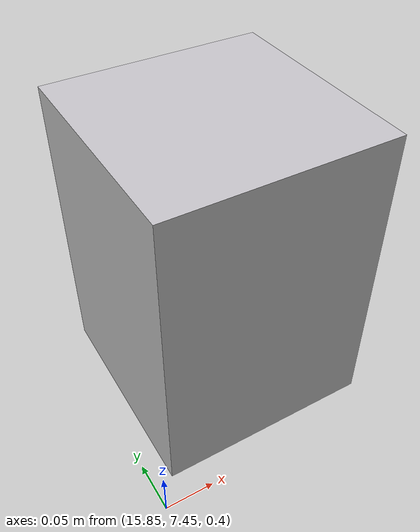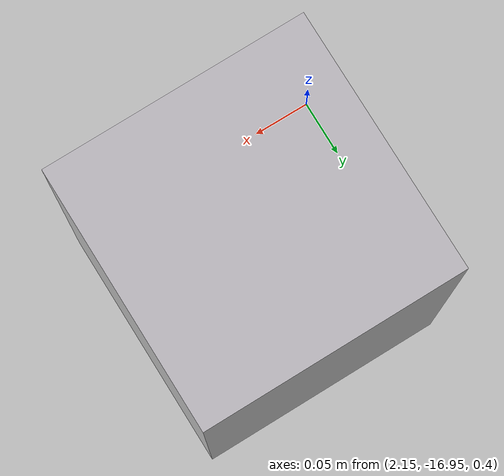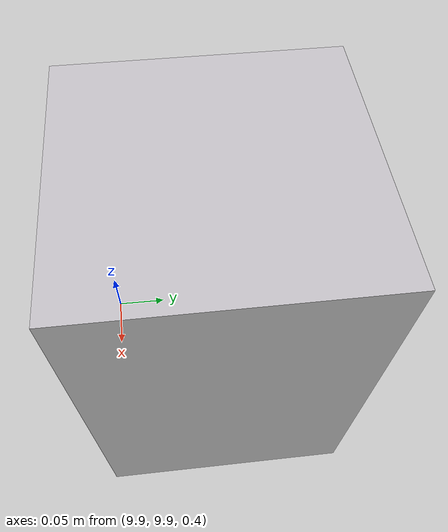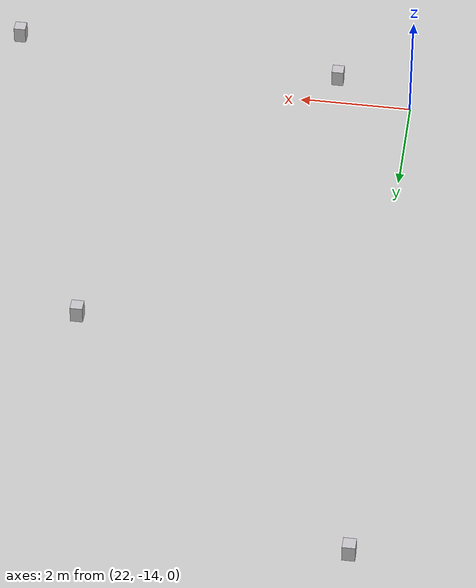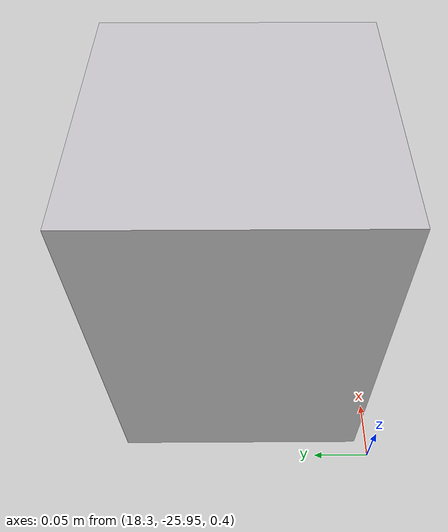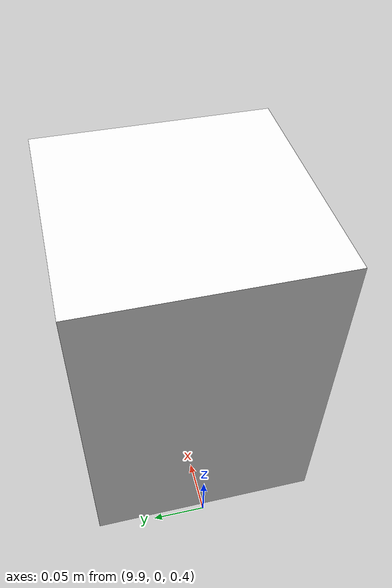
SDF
<sdf version="1.7">
 <world name="default">
  <light name="sun" type="directional">
   <pose>0 0 10 0 -0 0</pose>
   <diffuse>0.8 0.8 0.8 1</diffuse>
   <specular>0.2 0.2 0.2 1</specular>
   <attenuation>
    <range>1000</range>
    <constant>0.9</constant>
    <linear>0.01</linear>
    <quadratic>0.001</quadratic>
   </attenuation>
   <direction>-0.5 0.1 -0.9</direction>
   <spot><inner_angle>0</inner_angle><outer_angle>0</outer_angle><falloff>0</falloff></spot>
  </light>
  <model name="ground_plane">
   <static>1</static>
   <link name="link">
    <collision name="collision">
     <geometry><plane><normal>0 0 1</normal><size>100 100</size></plane></geometry>
     <surface><friction><ode><mu>100</mu><mu2>50</mu2></ode></friction></surface>
    </collision>
    <visual name="visual">
     <cast_shadows>0</cast_shadows>
     <geometry><plane><normal>0 0 1</normal><size>100 100</size></plane></geometry>
     <material>
      <script><uri>file://media/materials/scripts/gazebo.material</uri><name>Gazebo/Grey</name></script>
     </material>
    </visual>
   </link>
  </model>
  <gravity>0 0 -9.8</gravity>
  <magnetic_field>6e-06 2.3e-05 -4.2e-05</magnetic_field>
  <atmosphere type="adiabatic"/>
  <physics type="ode">
   <max_step_size>0.001</max_step_size>
   <real_time_factor>1</real_time_factor>
   <real_time_update_rate>1000</real_time_update_rate>
  </physics>
  <scene><ambient>0.4 0.4 0.4 1</ambient><background>0.7 0.7 0.7 1</background><shadows>1</shadows></scene>
  <spherical_coordinates>
   <surface_model>EARTH_WGS84</surface_model>
   <latitude_deg>0</latitude_deg>
   <longitude_deg>0</longitude_deg>
   <elevation>0</elevation>
   <heading_deg>0</heading_deg>
  </spherical_coordinates>
  <model name="LandMark3">
   <link name="base_link">
    <inertial>
     <pose>0 0 0.571648 0 -0 0</pose>
     <mass>159.314</mass>
     <inertia><ixx>2.50074</ixx><ixy>0</ixy><ixz>0</ixz><iyy>2.50074</iyy><iyz>0</iyz><izz>1.63568</izz></inertia>
    </inertial>
    <collision name="base_link_collision">
     <geometry>
      <mesh>
       <scale>1 1 1</scale>
       <uri>/home/lectric/Desktop/ERC22_WS/src/LandMark_description/meshes/LandMark3.dae</uri>
      </mesh>
     </geometry>
     <surface><friction><ode><mu>0.2</mu><mu2>0.2</mu2></ode></friction></surface>
    </collision>
    <visual name="base_link_visual">
     <pose>0 0 0.57 0 -0 0</pose>
     <geometry>
      <mesh>
       <scale>1 1 1</scale>
       <uri>/home/lectric/Desktop/ERC22_WS/src/LandMark_description/meshes/LandMark3.dae</uri>
      </mesh>
     </geometry>
    </visual>
    <self_collide>1</self_collide>
   </link>
   <plugin name="control" filename="libgazebo_ros_control.so"><robotNamespace>/</robotNamespace></plugin>
   <pose>28.35 -0.04 0 0 -0 0</pose>
  </model>
  <model name="LandMark7">
   <link name="base_link">
    <inertial>
     <pose>0 0 0.571648 0 -0 0</pose>
     <mass>159.314</mass>
     <inertia><ixx>2.50074</ixx><ixy>0</ixy><ixz>0</ixz><iyy>2.50074</iyy><iyz>0</iyz><izz>1.63568</izz></inertia>
    </inertial>
    <collision name="base_link_collision">
     <geometry>
      <mesh>
       <scale>1 1 1</scale>
       <uri>/home/lectric/Desktop/ERC22_WS/src/LandMark_description/meshes/LandMark7.dae</uri>
      </mesh>
     </geometry>
     <surface><friction><ode><mu>0.2</mu><mu2>0.2</mu2></ode></friction></surface>
    </collision>
    <visual name="base_link_visual">
     <pose>0 0 0.57 0 -0 0</pose>
     <geometry>
      <mesh>
       <scale>1 1 1</scale>
       <uri>/home/lectric/Desktop/ERC22_WS/src/LandMark_description/meshes/LandMark7.dae</uri>
      </mesh>
     </geometry>
    </visual>
    <self_collide>1</self_collide>
   </link>
   <plugin name="control" filename="libgazebo_ros_control.so"><robotNamespace>/</robotNamespace></plugin>
   <pose>15.97 7.57 0 0 -0 0</pose>
  </model>
  <model name="LandMark1">
   <link name="base_link">
    <inertial>
     <pose>0 0 0.571648 0 -0 0</pose>
     <mass>159.314</mass>
     <inertia><ixx>2.50074</ixx><ixy>0</ixy><ixz>0</ixz><iyy>2.50074</iyy><iyz>0</iyz><izz>1.63568</izz></inertia>
    </inertial>
    <collision name="base_link_collision">
     <geometry>
      <mesh>
       <scale>1 1 1</scale>
       <uri>/home/lectric/Desktop/ERC22_WS/src/LandMark_description/meshes/LandMark1.dae</uri>
      </mesh>
     </geometry>
     <surface><friction><ode><mu>0.2</mu><mu2>0.2</mu2></ode></friction></surface>
    </collision>
    <visual name="base_link_visual">
     <pose>0 0 0.57 0 -0 0</pose>
     <geometry>
      <mesh>
       <scale>1 1 1</scale>
       <uri>/home/lectric/Desktop/ERC22_WS/src/LandMark_description/meshes/LandMark1.dae</uri>
      </mesh>
     </geometry>
    </visual>
    <self_collide>1</self_collide>
   </link>
   <plugin name="control" filename="libgazebo_ros_control.so"><robotNamespace>/</robotNamespace></plugin>
   <pose>10 0 0 0 -0 0</pose>
  </model>
  <model name="LandMark2">
   <link name="base_link">
    <inertial>
     <pose>0 0 0.571648 0 -0 0</pose>
     <mass>159.314</mass>
     <inertia><ixx>2.50074</ixx><ixy>0</ixy><ixz>0</ixz><iyy>2.50074</iyy><iyz>0</iyz><izz>1.63568</izz></inertia>
    </inertial>
    <collision name="base_link_collision">
     <geometry>
      <mesh>
       <scale>1 1 1</scale>
       <uri>/home/lectric/Desktop/ERC22_WS/src/LandMark_description/meshes/LandMark2.dae</uri>
      </mesh>
     </geometry>
     <surface><friction><ode><mu>0.2</mu><mu2>0.2</mu2></ode></friction></surface>
    </collision>
    <visual name="base_link_visual">
     <pose>0 0 0.57 0 -0 0</pose>
     <geometry>
      <mesh>
       <scale>1 1 1</scale>
       <uri>/home/lectric/Desktop/ERC22_WS/src/LandMark_description/meshes/LandMark2.dae</uri>
      </mesh>
     </geometry>
    </visual>
    <self_collide>1</self_collide>
   </link>
   <plugin name="control" filename="libgazebo_ros_control.so"><robotNamespace>/</robotNamespace></plugin>
   <pose>10 -10 0 0 -0 0</pose>
  </model>
  <model name="LandMark4">
   <link name="base_link">
    <inertial>
     <pose>0 0 0.571648 0 -0 0</pose>
     <mass>159.314</mass>
     <inertia><ixx>2.50074</ixx><ixy>0</ixy><ixz>0</ixz><iyy>2.50074</iyy><iyz>0</iyz><izz>1.63568</izz></inertia>
    </inertial>
    <collision name="base_link_collision">
     <geometry>
      <mesh>
       <scale>1 1 1</scale>
       <uri>/home/lectric/Desktop/ERC22_WS/src/LandMark_description/meshes/LandMark4.dae</uri>
      </mesh>
     </geometry>
     <surface><friction><ode><mu>0.2</mu><mu2>0.2</mu2></ode></friction></surface>
    </collision>
    <visual name="base_link_visual">
     <pose>0 0 0.57 0 -0 0</pose>
     <geometry>
      <mesh>
       <scale>1 1 1</scale>
       <uri>/home/lectric/Desktop/ERC22_WS/src/LandMark_description/meshes/LandMark4.dae</uri>
      </mesh>
     </geometry>
    </visual>
    <self_collide>1</self_collide>
   </link>
   <plugin name="control" filename="libgazebo_ros_control.so"><robotNamespace>/</robotNamespace></plugin>
   <pose>21.83 -2.8 0 0 -0 0</pose>
  </model>
  <model name="LandMark5">
   <link name="base_link">
    <inertial>
     <pose>0 0 0.571648 0 -0 0</pose>
     <mass>159.314</mass>
     <inertia><ixx>2.50074</ixx><ixy>0</ixy><ixz>0</ixz><iyy>2.50074</iyy><iyz>0</iyz><izz>1.63568</izz></inertia>
    </inertial>
    <collision name="base_link_collision">
     <geometry>
      <mesh>
       <scale>1 1 1</scale>
       <uri>/home/lectric/Desktop/ERC22_WS/src/LandMark_description/meshes/LandMark5.dae</uri>
      </mesh>
     </geometry>
     <surface><friction><ode><mu>0.2</mu><mu2>0.2</mu2></ode></friction></surface>
    </collision>
    <visual name="base_link_visual">
     <pose>0 0 0.57 0 -0 0</pose>
     <geometry>
      <mesh>
       <scale>1 1 1</scale>
       <uri>/home/lectric/Desktop/ERC22_WS/src/LandMark_description/meshes/LandMark5.dae</uri>
      </mesh>
     </geometry>
    </visual>
    <self_collide>1</self_collide>
   </link>
   <plugin name="control" filename="libgazebo_ros_control.so"><robotNamespace>/</robotNamespace></plugin>
   <pose>18.71 -17.19 0 0 -0 0</pose>
  </model>
  <model name="LandMark11">
   <link name="base_link">
    <inertial>
     <pose>0 0 0.571648 0 -0 0</pose>
     <mass>159.314</mass>
     <inertia><ixx>2.50074</ixx><ixy>0</ixy><ixz>0</ixz><iyy>2.50074</iyy><iyz>0</iyz><izz>1.63568</izz></inertia>
    </inertial>
    <collision name="base_link_collision">
     <geometry>
      <mesh>
       <scale>1 1 1</scale>
       <uri>/home/lectric/Desktop/ERC22_WS/src/LandMark_description/meshes/LandMark11.dae</uri>
      </mesh>
     </geometry>
     <surface><friction><ode><mu>0.2</mu><mu2>0.2</mu2></ode></friction></surface>
    </collision>
    <visual name="base_link_visual">
     <pose>0 0 0.57 0 -0 0</pose>
     <geometry>
      <mesh>
       <scale>1 1 1</scale>
       <uri>/home/lectric/Desktop/ERC22_WS/src/LandMark_description/meshes/LandMark11.dae</uri>
      </mesh>
     </geometry>
    </visual>
    <self_collide>1</self_collide>
   </link>
   <plugin name="control" filename="libgazebo_ros_control.so"><robotNamespace>/</robotNamespace></plugin>
   <pose>18.41 -25.83 0 0 -0 0</pose>
  </model>
  <model name="LandMark6">
   <link name="base_link">
    <inertial>
     <pose>0 0 0.571648 0 -0 0</pose>
     <mass>159.314</mass>
     <inertia><ixx>2.50074</ixx><ixy>0</ixy><ixz>0</ixz><iyy>2.50074</iyy><iyz>0</iyz><izz>1.63568</izz></inertia>
    </inertial>
    <collision name="base_link_collision">
     <geometry>
      <mesh>
       <scale>1 1 1</scale>
       <uri>/home/lectric/Desktop/ERC22_WS/src/LandMark_description/meshes/LandMark6.dae</uri>
      </mesh>
     </geometry>
     <surface><friction><ode><mu>0.2</mu><mu2>0.2</mu2></ode></friction></surface>
    </collision>
    <visual name="base_link_visual">
     <pose>0 0 0.57 0 -0 0</pose>
     <geometry>
      <mesh>
       <scale>1 1 1</scale>
       <uri>/home/lectric/Desktop/ERC22_WS/src/LandMark_description/meshes/LandMark6.dae</uri>
      </mesh>
     </geometry>
    </visual>
    <self_collide>1</self_collide>
   </link>
   <plugin name="control" filename="libgazebo_ros_control.so"><robotNamespace>/</robotNamespace></plugin>
   <pose>26.95 -7.44 0 0 -0 0</pose>
  </model>
  <model name="LandMark9">
   <link name="base_link">
    <inertial>
     <pose>0 0 0.571648 0 -0 0</pose>
     <mass>159.314</mass>
     <inertia><ixx>2.50074</ixx><ixy>0</ixy><ixz>0</ixz><iyy>2.50074</iyy><iyz>0</iyz><izz>1.63568</izz></inertia>
    </inertial>
    <collision name="base_link_collision">
     <geometry>
      <mesh>
       <scale>1 1 1</scale>
       <uri>/home/lectric/Desktop/ERC22_WS/src/LandMark_description/meshes/LandMark9.dae</uri>
      </mesh>
     </geometry>
     <surface><friction><ode><mu>0.2</mu><mu2>0.2</mu2></ode></friction></surface>
    </collision>
    <visual name="base_link_visual">
     <pose>0 0 0.57 0 -0 0</pose>
     <geometry>
      <mesh>
       <scale>1 1 1</scale>
       <uri>/home/lectric/Desktop/ERC22_WS/src/LandMark_description/meshes/LandMark9.dae</uri>
      </mesh>
     </geometry>
    </visual>
    <self_collide>1</self_collide>
   </link>
   <plugin name="control" filename="libgazebo_ros_control.so"><robotNamespace>/</robotNamespace></plugin>
   <pose>10 10 0 0 -0 0</pose>
  </model>
  <model name="LandMark12">
   <link name="base_link">
    <inertial>
     <pose>0 0 0.571648 0 -0 0</pose>
     <mass>159.314</mass>
     <inertia><ixx>2.50074</ixx><ixy>0</ixy><ixz>0</ixz><iyy>2.50074</iyy><iyz>0</iyz><izz>1.63568</izz></inertia>
    </inertial>
    <collision name="base_link_collision">
     <geometry>
      <mesh>
       <scale>1 1 1</scale>
       <uri>/home/lectric/Desktop/ERC22_WS/src/LandMark_description/meshes/LandMark12.dae</uri>
      </mesh>
     </geometry>
     <surface><friction><ode><mu>0.2</mu><mu2>0.2</mu2></ode></friction></surface>
    </collision>
    <visual name="base_link_visual">
     <pose>0 0 0.57 0 -0 0</pose>
     <geometry>
      <mesh>
       <scale>1 1 1</scale>
       <uri>/home/lectric/Desktop/ERC22_WS/src/LandMark_description/meshes/LandMark12.dae</uri>
      </mesh>
     </geometry>
    </visual>
    <self_collide>1</self_collide>
   </link>
   <plugin name="control" filename="libgazebo_ros_control.so"><robotNamespace>/</robotNamespace></plugin>
   <pose>23.34 -14.11 0 0 -0 0</pose>
  </model>
  <model name="LandMark8">
   <link name="base_link">
    <inertial>
     <pose>0 0 0.571648 0 -0 0</pose>
     <mass>159.314</mass>
     <inertia><ixx>2.50074</ixx><ixy>0</ixy><ixz>0</ixz><iyy>2.50074</iyy><iyz>0</iyz><izz>1.63568</izz></inertia>
    </inertial>
    <collision name="base_link_collision">
     <geometry>
      <mesh>
       <scale>1 1 1</scale>
       <uri>/home/lectric/Desktop/ERC22_WS/src/LandMark_description/meshes/LandMark8.dae</uri>
      </mesh>
     </geometry>
     <surface><friction><ode><mu>0.2</mu><mu2>0.2</mu2></ode></friction></surface>
    </collision>
    <visual name="base_link_visual">
     <pose>0 0 0.57 0 -0 0</pose>
     <geometry>
      <mesh>
       <scale>1 1 1</scale>
       <uri>/home/lectric/Desktop/ERC22_WS/src/LandMark_description/meshes/LandMark8.dae</uri>
      </mesh>
     </geometry>
    </visual>
    <self_collide>1</self_collide>
   </link>
   <plugin name="control" filename="libgazebo_ros_control.so"><robotNamespace>/</robotNamespace></plugin>
   <pose>17.87 -7.57 0 0 -0 0</pose>
  </model>
  <model name="LandMark10">
   <link name="base_link">
    <inertial>
     <pose>0 0 0.571648 0 -0 0</pose>
     <mass>159.314</mass>
     <inertia><ixx>2.50074</ixx><ixy>0</ixy><ixz>0</ixz><iyy>2.50074</iyy><iyz>0</iyz><izz>1.63568</izz></inertia>
    </inertial>
    <collision name="base_link_collision">
     <geometry>
      <mesh>
       <scale>1 1 1</scale>
       <uri>/home/lectric/Desktop/ERC22_WS/src/LandMark_description/meshes/LandMark10.dae</uri>
      </mesh>
     </geometry>
     <surface><friction><ode><mu>0.2</mu><mu2>0.2</mu2></ode></friction></surface>
    </collision>
    <visual name="base_link_visual">
     <pose>0 0 0.57 0 -0 0</pose>
     <geometry>
      <mesh>
       <scale>1 1 1</scale>
       <uri>/home/lectric/Desktop/ERC22_WS/src/LandMark_description/meshes/LandMark10.dae</uri>
      </mesh>
     </geometry>
    </visual>
    <self_collide>1</self_collide>
   </link>
   <plugin name="control" filename="libgazebo_ros_control.so"><robotNamespace>/</robotNamespace></plugin>
   <pose>29.26 -14.52 0 0 -0 0</pose>
  </model>
  <model name="LandMark13">
   <link name="base_link">
    <inertial>
     <pose>0 0 0.571648 0 -0 0</pose>
     <mass>159.314</mass>
     <inertia><ixx>2.50074</ixx><ixy>0</ixy><ixz>0</ixz><iyy>2.50074</iyy><iyz>0</iyz><izz>1.63568</izz></inertia>
    </inertial>
    <collision name="base_link_collision">
     <geometry>
      <mesh>
       <scale>1 1 1</scale>
       <uri>/home/lectric/Desktop/ERC22_WS/src/LandMark_description/meshes/LandMark13.dae</uri>
      </mesh>
     </geometry>
     <surface><friction><ode><mu>0.2</mu><mu2>0.2</mu2></ode></friction></surface>
    </collision>
    <visual name="base_link_visual">
     <pose>0 0 0.57 0 -0 0</pose>
     <geometry>
      <mesh>
       <scale>1 1 1</scale>
       <uri>/home/lectric/Desktop/ERC22_WS/src/LandMark_description/meshes/LandMark13.dae</uri>
      </mesh>
     </geometry>
    </visual>
    <self_collide>1</self_collide>
   </link>
   <plugin name="control" filename="libgazebo_ros_control.so"><robotNamespace>/</robotNamespace></plugin>
   <pose>8.18 -18.63 0 0 -0 0</pose>
  </model>
  <model name="LandMark15">
   <link name="base_link">
    <inertial>
     <pose>0 0 0.571648 0 -0 0</pose>
     <mass>159.314</mass>
     <inertia><ixx>2.50074</ixx><ixy>0</ixy><ixz>0</ixz><iyy>2.50074</iyy><iyz>0</iyz><izz>1.63568</izz></inertia>
    </inertial>
    <collision name="base_link_collision">
     <geometry>
      <mesh>
       <scale>1 1 1</scale>
       <uri>/home/lectric/Desktop/ERC22_WS/src/LandMark_description/meshes/LandMark15.dae</uri>
      </mesh>
     </geometry>
     <surface><friction><ode><mu>0.2</mu><mu2>0.2</mu2></ode></friction></surface>
    </collision>
    <visual name="base_link_visual">
     <pose>0 0 0.57 0 -0 0</pose>
     <geometry>
      <mesh>
       <scale>1 1 1</scale>
       <uri>/home/lectric/Desktop/ERC22_WS/src/LandMark_description/meshes/LandMark15.dae</uri>
      </mesh>
     </geometry>
    </visual>
    <self_collide>1</self_collide>
   </link>
   <plugin name="control" filename="libgazebo_ros_control.so"><robotNamespace>/</robotNamespace></plugin>
   <pose>2.27 -16.84 0 0 -0 0</pose>
  </model>
 </world>
</sdf>
